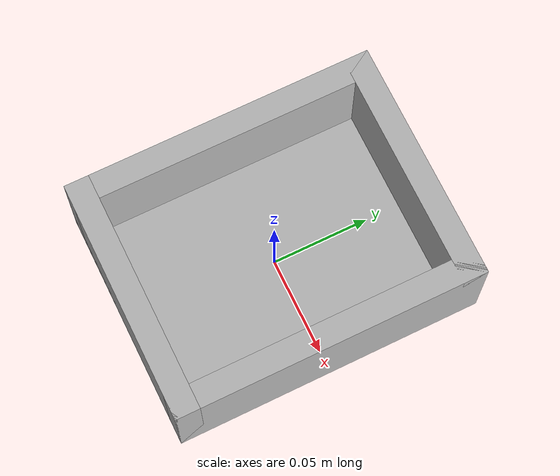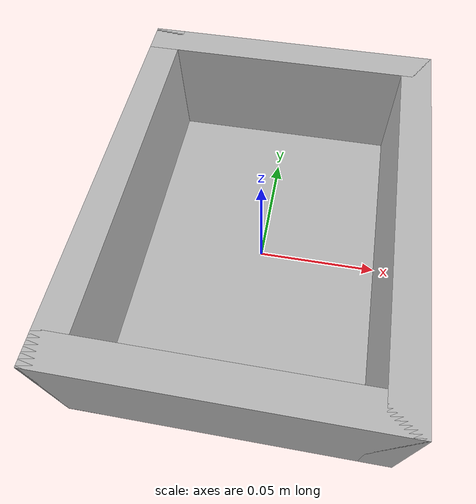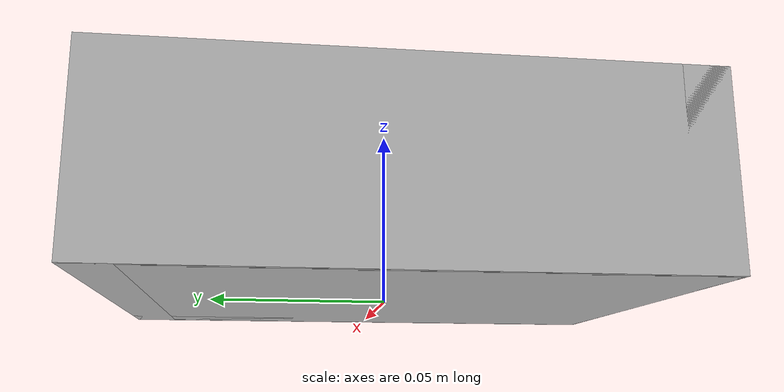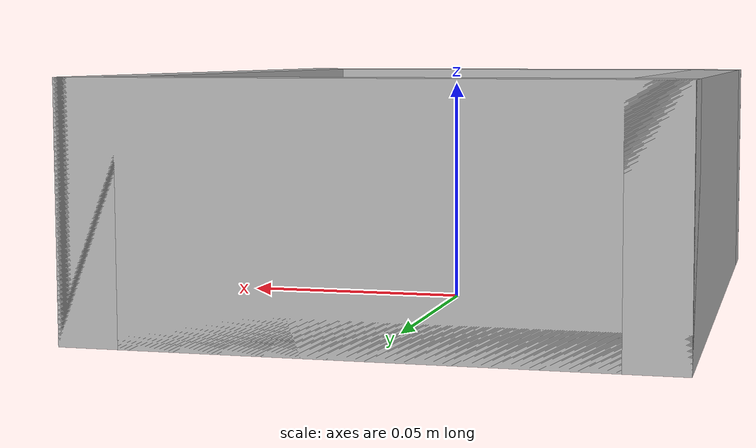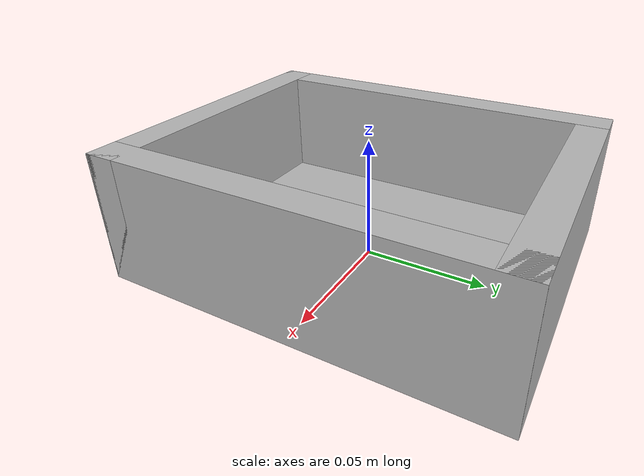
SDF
<?xml version="1.0"?>
<sdf version="1.7">
  <model name="bin_model">
    <!--
    Axes:
      +X - Pointing towards front (slope)
      +Y - Pointing to left side
      +Z - Up
    Origin:
      (0, 0, 0) at the center bottom of the bin
    -->
    <link name="bin_base">
      <inertial>
        <mass>5</mass>
        <inertia>
          <ixx>0.79</ixx>
          <ixy>0</ixy>
          <ixz>0</ixz>
          <iyy>0.53</iyy>
          <iyz>0</iyz>
          <izz>1.2</izz>
        </inertia>
      </inertial>
      <visual name="visual">
        <pose>0.055 0 0.02625 0 0 0</pose>
        <geometry>
          <box>
            <size>0.0125 0.1575 0.0525</size>
          </box>
        </geometry>
      </visual>
      <collision name="front">
        <pose>0.055 0 0.02625 0 0 0</pose>
        <geometry>
          <box>
            <size>0.0125 0.1575 0.0525</size>
          </box>
        </geometry>
      </collision>
      <visual name="back">
        <pose>-0.055 0 0.02625 0 0 0</pose>
        <geometry>
          <box>
            <size>0.0125 0.1575 0.0525</size>
          </box>
        </geometry>
      </visual>
      <collision name="back">
        <pose>-0.055 0 0.02625 0 0 0</pose>
        <geometry>
          <box>
            <size>0.0125 0.1575 0.0525</size>
          </box>
        </geometry>
      </collision>
      <visual name="left">
        <pose>0 0.0725 0.02625 0 0 0</pose>
        <geometry>
          <box>
            <size>0.1225 0.0125 0.0525</size>
          </box>
        </geometry>
      </visual>
      <collision name="left">
        <pose>0 0.0725 0.02625 0 0 0</pose>
        <geometry>
          <box>
            <size>0.1225 0.0125 0.0525</size>
          </box>
        </geometry>
      </collision>
      <visual name="right">
        <pose>0 -0.0725 0.02625 0 0 0</pose>
        <geometry>
          <box>
            <size>0.1225 0.0125 0.0525</size>
          </box>
        </geometry>
      </visual>
      <collision name="right">
        <pose>0 -0.0725 0.02625 0 0 0</pose>
        <geometry>
          <box>
            <size>0.1225 0.0125 0.0525</size>
          </box>
        </geometry>
      </collision>
      <visual name="bottom">
        <pose>0.0 0.0 0.00375 0 0 0</pose>
        <geometry>
          <box>
            <size>0.1225 0.1575 0.0075</size>
          </box>
        </geometry>
      </visual>
      <collision name="bottom">
        <pose>0.0 0.0 0.00375 0 0 0</pose>
        <geometry>
          <box>
            <size>0.1225 0.1575 0.0075</size>
          </box>
        </geometry>
      </collision>
    </link>
    <frame name="bin_front_top_center">
      <pose relative_to="bin_base">0.22 0 0.21 0 0 0</pose>
    </frame>
  </model>
</sdf>
